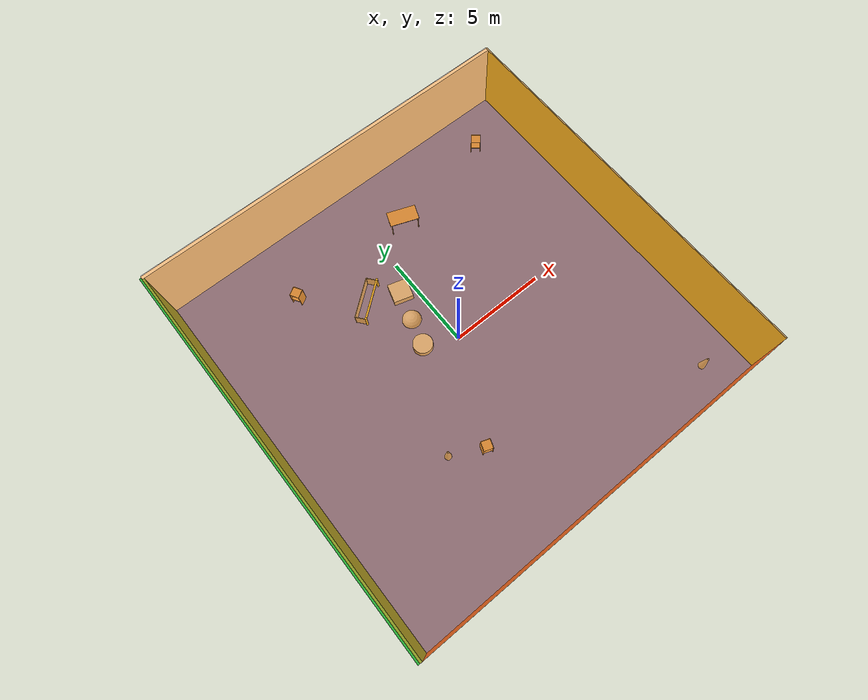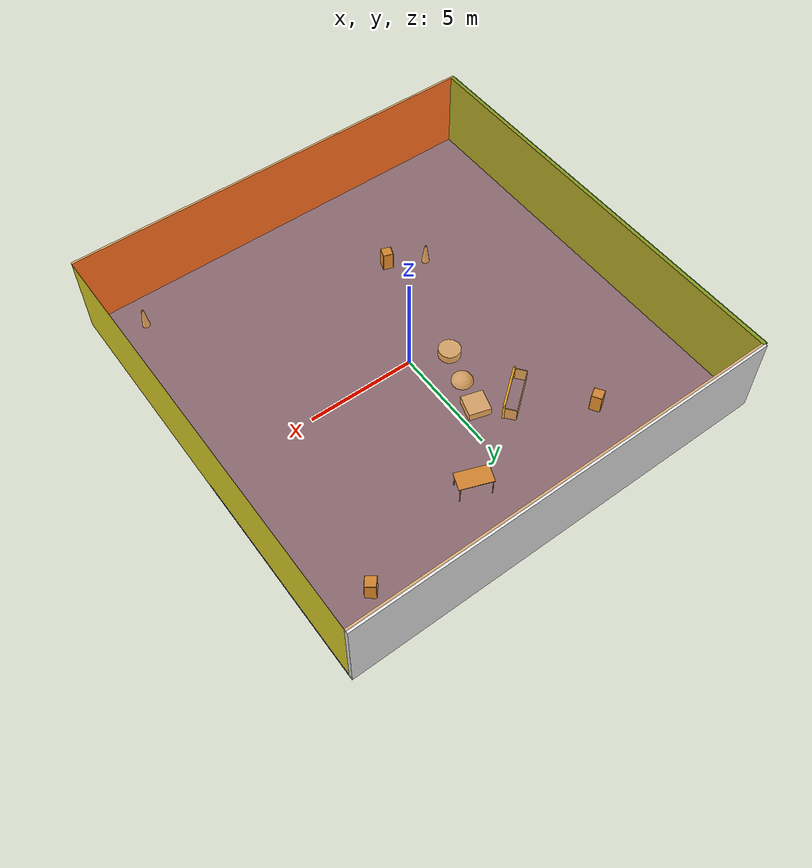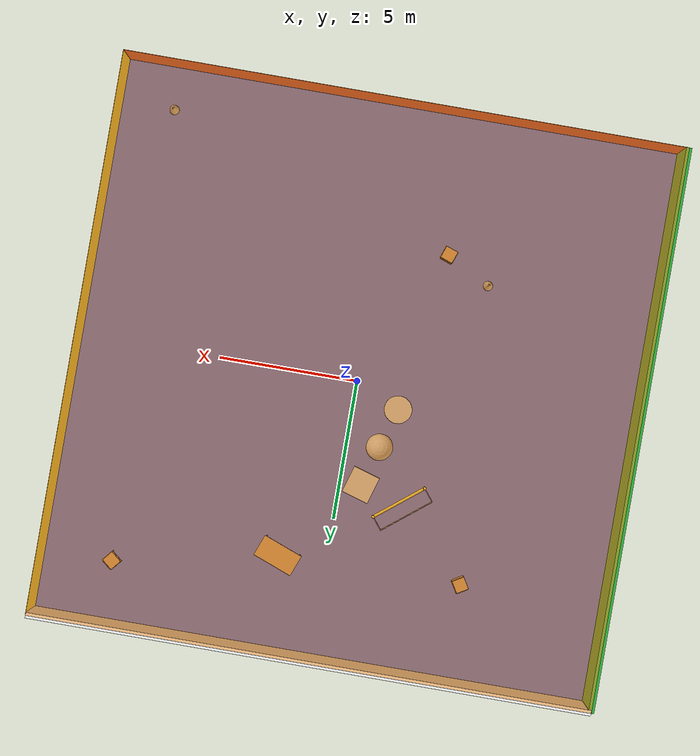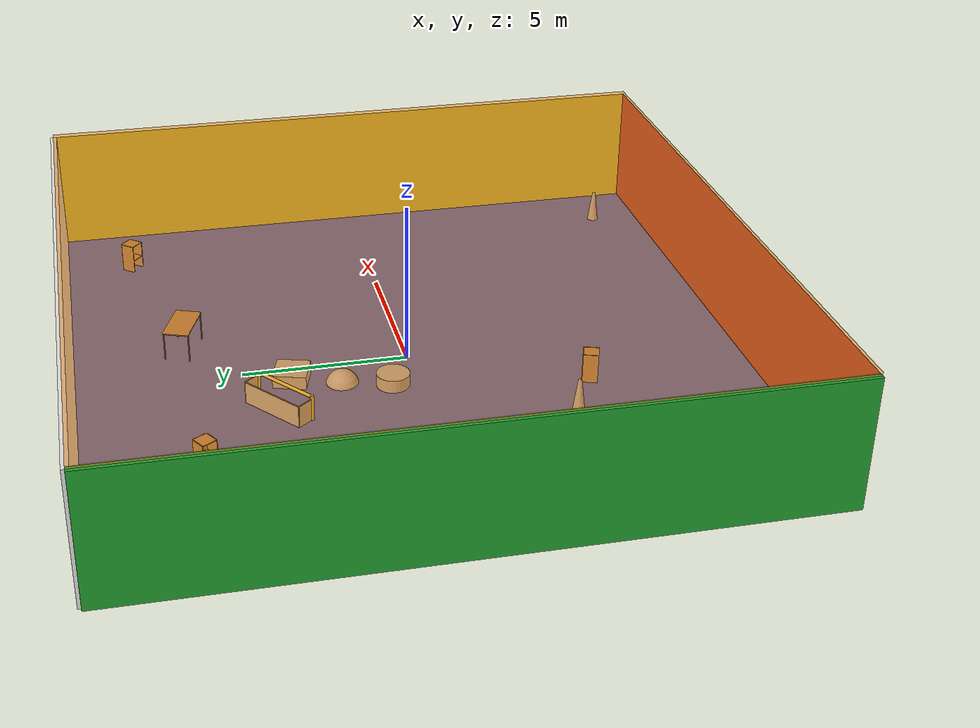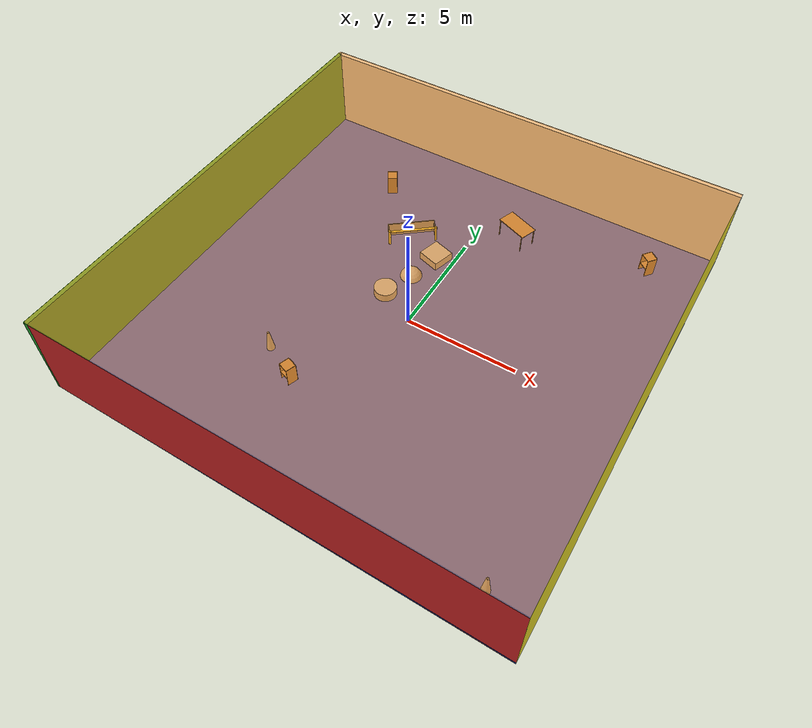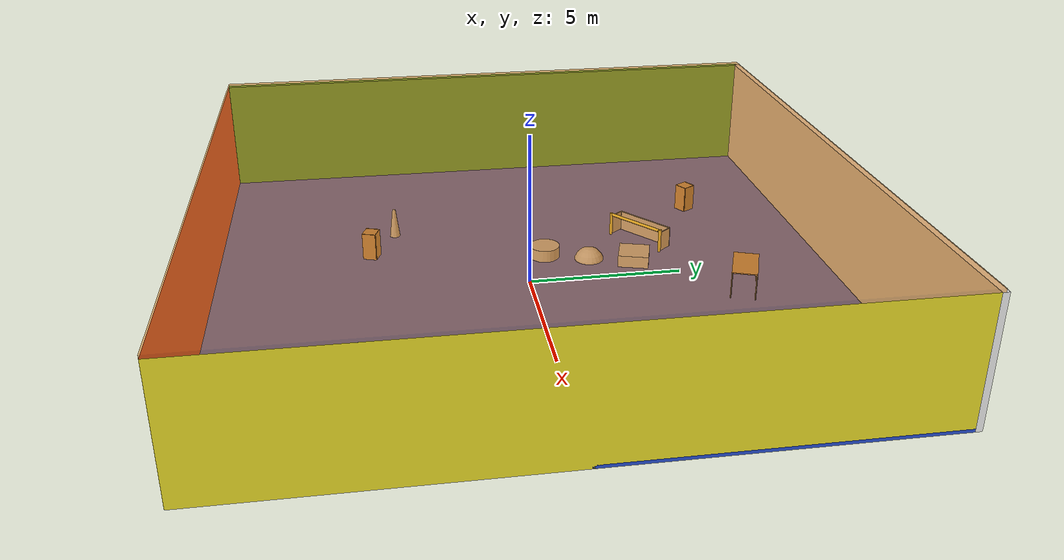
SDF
<sdf version="1.4">
 <world name="default">
  <physics type="ode">
   <max_step_size>0.001</max_step_size>
   <real_time_factor>1</real_time_factor>
   <real_time_update_rate>1000</real_time_update_rate>
   <gravity>0 0 -9.8</gravity>
  </physics>
  <scene><ambient>0.4 0.4 0.4 1</ambient><background>0.7 0.7 0.7 1</background><shadows>1</shadows></scene>
  <model name="Surrounding">
   <static>1</static>
   <link name="Ceiling">
    <collision name="Ceiling_Collision"><geometry><box><size>20 20 0.1</size></box></geometry></collision>
    <visual name="Ceiling_Visual">
     <geometry><box><size>20 20 0.1</size></box></geometry>
     <material>
      <script>
       <uri>file://media/materials/scripts/gazebo.material</uri>
       <name>Gazebo/OrangeTransparent</name>
      </script>
     </material>
    </visual>
    <pose>0 0 4.05 0 0 0</pose>
   </link>
   <link name="Wall_South">
    <collision name="Wall_South_Collision">
     <geometry><box><size>20 0 4</size></box></geometry>
     <pose>0 0 2 0 -0 0</pose>
    </collision>
    <visual name="Wall_South_Visual">
     <pose>0 0 2 0 -0 0</pose>
     <geometry><box><size>20 0 4</size></box></geometry>
     <material>
      <script><uri>file://media/materials/scripts/gazebo.material</uri><name>Gazebo/RedBright</name></script>
     </material>
    </visual>
    <velocity_decay><linear>0</linear><angular>0</angular></velocity_decay>
    <pose>0 -10 0 0 -0 0</pose>
   </link>
   <link name="Wall_East">
    <collision name="Wall_21_Collision">
     <geometry><box><size>20 0 4</size></box></geometry>
     <pose>0 0 2 0 -0 0</pose>
    </collision>
    <visual name="Wall_21_Visual">
     <pose>0 0 2 0 -0 0</pose>
     <geometry><box><size>20 0 4</size></box></geometry>
     <material>
      <script><uri>file://media/materials/scripts/gazebo.material</uri><name>Gazebo/YellowGlow</name></script>
     </material>
    </visual>
    <velocity_decay><linear>0</linear><angular>0</angular></velocity_decay>
    <pose>10 0 0 0 -0 1.5708</pose>
   </link>
   <link name="Wall_North">
    <collision name="Wall_22_Collision">
     <geometry><box><size>20 0.2 4</size></box></geometry>
     <pose>0 0 2 0 -0 0</pose>
    </collision>
    <visual name="Wall_22_Visual">
     <pose>0 0 2 0 -0 0</pose>
     <geometry><box><size>20 0.2 4</size></box></geometry>
     <material>
      <script><uri>file://media/materials/scripts/gazebo.material</uri><name>Gazebo/White</name></script>
     </material>
    </visual>
    <velocity_decay><linear>0</linear><angular>0</angular></velocity_decay>
    <pose>0 10 0 0 -0 0</pose>
   </link>
   <link name="Wall_West">
    <collision name="Wall_23_Collision">
     <geometry><box><size>20 0.2 4</size></box></geometry>
     <pose>0 0 2 0 -0 0</pose>
    </collision>
    <visual name="Wall_23_Visual">
     <pose>0 0 2 0 -0 0</pose>
     <geometry><box><size>20 0.2 4</size></box></geometry>
     <material>
      <script><uri>file://media/materials/scripts/gazebo.material</uri><name>Gazebo/GreenGlow</name></script>
     </material>
    </visual>
    <velocity_decay><linear>0</linear><angular>0</angular></velocity_decay>
    <pose>-10 0 0 0 0 -1.5708</pose>
   </link>
   <link name="Ground_link">
    <collision name="collision">
     <pose>0 0 .05 0 -0 0</pose>
     <geometry><box><size>20 20 0.1</size></box></geometry>
    </collision>
    <visual name="visual">
     <pose>0 0 .05 0 -0 0</pose>
     <geometry><box><size>20 20 0.1</size></box></geometry>
     <material>
      <script><uri>file://media/materials/scripts/gazebo.material</uri><name>Gazebo/BlueGlow</name></script>
     </material>
    </visual>
   </link>
   <static>1</static>
  </model>
  <spherical_coordinates>
   <surface_model>EARTH_WGS84</surface_model>
   <latitude_deg>0</latitude_deg>
   <longitude_deg>0</longitude_deg>
   <elevation>0</elevation>
   <heading_deg>0</heading_deg>
  </spherical_coordinates>
  <light name="lightball_0" type="diffuse">
   <diffuse>0.8 0.8 0.8 1</diffuse>
   <specular>0.2 0.2 0.2 1</specular>
   <attenuation>
    <range>100</range>
    <constant>0.7</constant>
    <linear>0.01</linear>
    <quadratic>0.001</quadratic>
   </attenuation>
   <direction>-0.5 0.1 -0.9</direction>
   <pose>-4.9847766952 5.35863929309 1.28862618647 0 0 0</pose>
  </light>
  <light name="lightball_1" type="diffuse">
   <diffuse>0.8 0.8 0.8 1</diffuse>
   <specular>0.2 0.2 0.2 1</specular>
   <attenuation>
    <range>100</range>
    <constant>0.7</constant>
    <linear>0.01</linear>
    <quadratic>0.001</quadratic>
   </attenuation>
   <direction>-0.5 0.1 -0.9</direction>
   <pose>-7.83036503039 7.9553729412 1.0692190494 0 0 0</pose>
  </light>
  <light name="lightball_2" type="diffuse">
   <diffuse>0.8 0.8 0.8 1</diffuse>
   <specular>0.2 0.2 0.2 1</specular>
   <attenuation>
    <range>100</range>
    <constant>0.7</constant>
    <linear>0.01</linear>
    <quadratic>0.001</quadratic>
   </attenuation>
   <direction>-0.5 0.1 -0.9</direction>
   <pose>8.07583174899 5.17762010838 3.24424700298 0 0 0</pose>
  </light>
  <light name="lightball_3" type="diffuse">
   <diffuse>0.8 0.8 0.8 1</diffuse>
   <specular>0.2 0.2 0.2 1</specular>
   <attenuation>
    <range>100</range>
    <constant>0.7</constant>
    <linear>0.01</linear>
    <quadratic>0.001</quadratic>
   </attenuation>
   <direction>-0.5 0.1 -0.9</direction>
   <pose>-6.1548351201 -7.19529640477 2.65512415294 0 0 0</pose>
  </light>
  <light name="lightball_4" type="diffuse">
   <diffuse>0.8 0.8 0.8 1</diffuse>
   <specular>0.2 0.2 0.2 1</specular>
   <attenuation>
    <range>100</range>
    <constant>0.7</constant>
    <linear>0.01</linear>
    <quadratic>0.001</quadratic>
   </attenuation>
   <direction>-0.5 0.1 -0.9</direction>
   <pose>-6.36709988748 -2.82383108614 2.74916633255 0 0 0</pose>
  </light>
  <light name="lightball_5" type="diffuse">
   <diffuse>0.8 0.8 0.8 1</diffuse>
   <specular>0.2 0.2 0.2 1</specular>
   <attenuation>
    <range>100</range>
    <constant>0.7</constant>
    <linear>0.01</linear>
    <quadratic>0.001</quadratic>
   </attenuation>
   <direction>-0.5 0.1 -0.9</direction>
   <pose>1.55295051895 -3.23689947551 2.42082948723 0 0 0</pose>
  </light>
  <light name="lightball_6" type="diffuse">
   <diffuse>0.8 0.8 0.8 1</diffuse>
   <specular>0.2 0.2 0.2 1</specular>
   <attenuation>
    <range>100</range>
    <constant>0.7</constant>
    <linear>0.01</linear>
    <quadratic>0.001</quadratic>
   </attenuation>
   <direction>-0.5 0.1 -0.9</direction>
   <pose>-0.563254431644 8.4066033261 1.50988439767 0 0 0</pose>
  </light>
  <light name="lightball_7" type="diffuse">
   <diffuse>0.8 0.8 0.8 1</diffuse>
   <specular>0.2 0.2 0.2 1</specular>
   <attenuation>
    <range>100</range>
    <constant>0.7</constant>
    <linear>0.01</linear>
    <quadratic>0.001</quadratic>
   </attenuation>
   <direction>-0.5 0.1 -0.9</direction>
   <pose>-4.85526429622 7.52911919916 1.46989523825 0 0 0</pose>
  </light>
  <light name="lightball_8" type="diffuse">
   <diffuse>0.8 0.8 0.8 1</diffuse>
   <specular>0.2 0.2 0.2 1</specular>
   <attenuation>
    <range>100</range>
    <constant>0.7</constant>
    <linear>0.01</linear>
    <quadratic>0.001</quadratic>
   </attenuation>
   <direction>-0.5 0.1 -0.9</direction>
   <pose>-1.40033661918 -9.09527749983 1.64524933803 0 0 0</pose>
  </light>
  <light name="lightball_9" type="diffuse">
   <diffuse>0.8 0.8 0.8 1</diffuse>
   <specular>0.2 0.2 0.2 1</specular>
   <attenuation>
    <range>100</range>
    <constant>0.7</constant>
    <linear>0.01</linear>
    <quadratic>0.001</quadratic>
   </attenuation>
   <direction>-0.5 0.1 -0.9</direction>
   <pose>8.41849868897 6.2667429421 2.88273669423 0 0 0</pose>
  </light>
  <include>
   <uri>model://construction_cone</uri>
   <pose>-4.02775404374 -4.17727929536 0 0 0 2.3026882591</pose>
  </include>
  <include><uri>model://cabinet</uri><pose>-4.85442939832 6.52797807345 0 0 0 0.541798511304</pose></include>
  <include><uri>model://cabinet</uri><pose>-2.45591843256 -5.01519285149 0 0 0 1.23222109522</pose></include>
  <include>
   <uri>model://textured_shapes</uri>
   <pose>-1.18423776971 2.18529329865 0 0 0 2.85387050925</pose>
  </include>
  <include>
   <uri>model://robocup_3Dsim_goal</uri>
   <pose>-2.19916155011 4.0061679466 0 0 0 2.24391343131</pose>
  </include>
  <include><uri>model://table</uri><pose>1.73638177055 6.59572870487 0 0 0 2.78127828543</pose></include>
  <include>
   <uri>model://construction_cone</uri>
   <pose>8.12386386242 -8.48082476172 0 0 0 3.1051073894</pose>
  </include>
  <include><uri>model://cabinet</uri><pose>7.53364898873 7.78800816081 0 0 0 0.884009186929</pose></include>
 </world>
</sdf>

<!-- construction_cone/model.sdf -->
<sdf version="1.5">
  <model name="Construction Cone">
    <link name="link">
      <collision name="collision">
        <geometry>
          <mesh>
            <scale>10 10 10</scale>
            <uri>file://isr-testbed/construction_cone/meshes/construction_cone.dae</uri>
          </mesh>
        </geometry>
      </collision>
      <visual name="visual">
        <geometry>
          <mesh>
            <scale>10 10 10</scale>
            <uri>file://isr-testbed/construction_cone/meshes/construction_cone.dae</uri>
          </mesh>
        </geometry>
      </visual>
    </link>
  </model>
</sdf>

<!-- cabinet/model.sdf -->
<sdf version="1.5">
  <model name="cabinet">
    <static>true</static>
    <link name="cabinet_bottom_plate">
      <inertial>
        <pose>0 0 -1 0 0 0</pose>
        <inertia>
          <ixx>2.050000</ixx>
          <ixy>0</ixy>
          <ixz>0</ixz>
          <iyy>2.050000</iyy>
          <iyz>0</iyz>
          <izz>2.050000</izz>
        </inertia>
        <mass>25.000000</mass>
      </inertial>
      <collision name="cabinet_bottom_plate_geom">
        <pose>0 0 0.010000 0 0 0</pose>
        <geometry>
          <box>
            <size>0.450000 0.450000 0.020000</size>
          </box>
        </geometry>
      </collision>
      <visual name="cabinet_bottom_plate_geom_visual">
        <pose>0 0 0.010000 0 0 0</pose>
        <geometry>
          <box>
            <size>0.450000 0.450000 0.020000</size>
          </box>
        </geometry>
        <material>
          <script>
            <uri>model://media/materials/scripts/gazebo.material</uri>
            <name>Gazebo/Wood</name>
          </script>
        </material>
      </visual>
      <collision name="cabinet_bottom_plate_geom_cabinet_back_plate">
        <pose>0.235000 0 0.510000 0 0 0</pose>
        <geometry>
          <box>
            <size>0.020000 0.450000 1.020000</size>
          </box>
        </geometry>
      </collision>
      <visual name="cabinet_bottom_plate_geom_cabinet_back_plate_visual">
        <pose>0.235000 0 0.510000 0 0 0</pose>
        <geometry>
          <box>
            <size>0.020000 0.450000 1.020000</size>
          </box>
        </geometry>
        <material>
          <script>
            <uri>model://media/materials/scripts/gazebo.material</uri>
            <name>Gazebo/Wood</name>
          </script>
        </material>
      </visual>
      <collision name="cabinet_bottom_plate_geom_cabinet_left_plate">
        <pose>0 0.235000 0.510000 0 0 0</pose>
        <geometry>
          <box>
            <size>0.450000 0.020000 1.020000</size>
          </box>
        </geometry>
      </collision>
      <visual name="cabinet_bottom_plate_geom_cabinet_left_plate_visual">
        <pose>0 0.235000 0.510000 0 0 0</pose>
        <geometry>
          <box>
            <size>0.450000 0.020000 1.020000</size>
          </box>
        </geometry>
        <material>
          <script>
            <uri>model://media/materials/scripts/gazebo.material</uri>
            <name>Gazebo/Wood</name>
          </script>
        </material>
      </visual>
      <collision name="cabinet_bottom_plate_geom_cabinet_middle_plate">
        <pose>0 0 0.510000 0 0 0</pose>
        <geometry>
          <box>
            <size>0.450000 0.450000 0.020000</size>
          </box>
        </geometry>
      </collision>
      <visual name="cabinet_bottom_plate_geom_cabinet_middle_plate_visual">
        <pose>0 0 0.510000 0 0 0</pose>
        <geometry>
          <box>
            <size>0.450000 0.450000 0.020000</size>
          </box>
        </geometry>
        <material>
          <script>
            <uri>model://media/materials/scripts/gazebo.material</uri>
            <name>Gazebo/Wood</name>
          </script>
        </material>
      </visual>
      <collision name="cabinet_bottom_plate_geom_cabinet_right_plate">
        <pose>0 -0.235000 0.510000 0 0 0</pose>
        <geometry>
          <box>
            <size>0.450000 0.020000 1.020000</size>
          </box>
        </geometry>
      </collision>
      <visual name="cabinet_bottom_plate_geom_cabinet_right_plate_visual">
        <pose>0 -0.235000 0.510000 0 0 0</pose>
        <geometry>
          <box>
            <size>0.450000 0.020000 1.020000</size>
          </box>
        </geometry>
        <material>
          <script>
            <uri>model://media/materials/scripts/gazebo.material</uri>
            <name>Gazebo/Wood</name>
          </script>
        </material>
      </visual>
      <collision name="cabinet_bottom_plate_geom_cabinet_top_plate">
        <pose>0 0 1.010000 0 0 0</pose>
        <geometry>
          <box>
            <size>0.450000 0.450000 0.020000</size>
          </box>
        </geometry>
      </collision>
      <visual name="cabinet_bottom_plate_geom_cabinet_top_plate_visual">
        <pose>0 0 1.010000 0 0 0</pose>
        <geometry>
          <box>
            <size>0.450000 0.450000 0.020000</size>
          </box>
        </geometry>
        <material>
          <script>
            <uri>model://media/materials/scripts/gazebo.material</uri>
            <name>Gazebo/Wood</name>
          </script>
        </material>
      </visual>
    </link>
  </model>
</sdf>

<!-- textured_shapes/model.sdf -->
<sdf version="1.6">
  <model name="textured_shapes">
    <pose>0 0 0.5 0 0 0</pose>
    <link name="box">
      <pose>0 -1.5 0 0 0 0</pose>
      <collision name="collision">
        <geometry>
          <box>
            <size>1 1 1</size>
          </box>
        </geometry>
      </collision>
      <visual name="visual">
        <geometry>
          <box>
            <size>1 1 1</size>
          </box>
        </geometry>
        <material>
          <script>
            <uri>model://../model_source/models/textured_shapes/materials/scripts</uri>
            <uri>model://../model_source/models/textured_shapes/materials/textures</uri>
            <name>TexturedShape/Squares</name>
          </script>
        </material>
      </visual>
    </link>
    <link name="sphere">
      <collision name="collision">
        <geometry>
          <sphere>
            <radius>0.5</radius>
          </sphere>
        </geometry>
      </collision>
      <visual name="visual">
        <geometry>
          <sphere>
            <radius>0.5</radius>
          </sphere>
        </geometry>
        <material>
          <script>
            <uri>model://../model_source/models/textured_shapes/materials/scripts</uri>
            <uri>model://../model_source/models/textured_shapes/materials/textures</uri>
            <name>TexturedShape/Squares</name>
          </script>
        </material>
      </visual>
    </link>
    <link name="cylinder">
      <pose>0 1.5 0 0 0 0</pose>
      <collision name="collision">
        <geometry>
          <cylinder>
            <radius>0.5</radius>
            <length>1</length>
          </cylinder>
        </geometry>
      </collision>
      <visual name="visual">
        <geometry>
          <cylinder>
            <radius>0.5</radius>
            <length>1</length>
          </cylinder>
        </geometry>
        <material>
          <script>
            <uri>model://../model_source/models/textured_shapes/materials/scripts</uri>
            <uri>model://../model_source/models/textured_shapes/materials/textures</uri>
            <name>TexturedShape/Squares</name>
          </script>
        </material>
      </visual>
    </link>
  </model>
</sdf>

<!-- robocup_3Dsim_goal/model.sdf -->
<sdf version="1.5">
  <model name="robocup_3d_goal">
    <static>true</static>
    <link name="left_post">
      <pose>0 1.05 0.45 0 0 0</pose>
      <collision name="collision">
        <geometry>
          <cylinder>
            <radius>0.05</radius>
            <length>0.9</length>
          </cylinder>
        </geometry>
      </collision>
      <visual name="visual">
        <geometry>
          <cylinder>
            <radius>0.05</radius>
            <length>0.9</length>
          </cylinder>
        </geometry>
        <material>
          <script>
            <uri>file://media/materials/scripts/gazebo.material</uri>
            <name>Gazebo/ZincYellow</name>
          </script>
        </material>
      </visual>
    </link>
    <link name="left_support_horiz_lower">
      <pose>0.30 1.05 0.01 0 0 0</pose>
      <collision name="collision">
        <geometry>
          <box>
            <size>0.50 0.02 0.02</size>
          </box>
        </geometry>
      </collision>
      <visual name="visual">
        <geometry>
          <box>
            <size>0.50 0.02 0.02</size>
          </box>
        </geometry>
        <material>
          <script>
            <uri>file://media/materials/scripts/gazebo.material</uri>
            <name>Gazebo/White</name>
          </script>
        </material>
      </visual>
    </link>
    <link name="left_support_horiz_upper">
      <pose>0.30 1.05 0.79 0 0 0</pose>
      <collision name="collision">
        <geometry>
          <box>
            <size>0.50 0.02 0.02</size>
          </box>
        </geometry>
      </collision>
      <visual name="visual">
        <geometry>
          <box>
            <size>0.50 0.02 0.02</size>
          </box>
        </geometry>
        <material>
          <script>
            <uri>file://media/materials/scripts/gazebo.material</uri>
            <name>Gazebo/White</name>
          </script>
        </material>
      </visual>
    </link>
    <link name="left_support_vertical">
      <pose>0.56 1.05 0.4 0 1.5708 0</pose>
      <collision name="collision">
        <geometry>
          <box>
            <size>0.80 0.02 0.02</size>
          </box>
        </geometry>
      </collision>
      <visual name="visual">
        <geometry>
          <box>
            <size>0.80 0.02 0.02</size>
          </box>
        </geometry>
        <material>
          <script>
            <uri>file://media/materials/scripts/gazebo.material</uri>
            <name>Gazebo/White</name>
          </script>
        </material>
      </visual>
    </link>
    <link name="right_support_horiz_lower">
      <pose>0.30 -1.05 0.01 0 0 0</pose>
      <collision name="collision">
        <geometry>
          <box>
            <size>0.50 0.02 0.02</size>
          </box>
        </geometry>
      </collision>
      <visual name="visual">
        <geometry>
          <box>
            <size>0.50 0.02 0.02</size>
          </box>
        </geometry>
        <material>
          <script>
            <uri>file://media/materials/scripts/gazebo.material</uri>
            <name>Gazebo/White</name>
          </script>
        </material>
      </visual>
    </link>
    <link name="right_support_horiz_upper">
      <pose>0.30 -1.05 0.79 0 0 0</pose>
      <collision name="collision">
        <geometry>
          <box>
            <size>0.50 0.02 0.02</size>
          </box>
        </geometry>
      </collision>
      <visual name="visual">
        <geometry>
          <box>
            <size>0.50 0.02 0.02</size>
          </box>
        </geometry>
        <material>
          <script>
            <uri>file://media/materials/scripts/gazebo.material</uri>
            <name>Gazebo/White</name>
          </script>
        </material>
      </visual>
    </link>
    <link name="right_support_vertical">
      <pose>0.56 -1.05 0.4 0 1.5708 0</pose>
      <collision name="collision">
        <geometry>
          <box>
            <size>0.80 0.02 0.02</size>
          </box>
        </geometry>
      </collision>
      <visual name="visual">
        <geometry>
          <box>
            <size>0.80 0.02 0.02</size>
          </box>
        </geometry>
        <material>
          <script>
            <uri>file://media/materials/scripts/gazebo.material</uri>
            <name>Gazebo/White</name>
          </script>
        </material>
      </visual>
    </link>
    <link name="center_support_horiz_lower">
      <pose>0.56 0 0.01 0 1.5708 0</pose>
      <collision name="collision">
        <geometry>
          <box>
            <size>0.02 2.08 0.02</size>
          </box>
        </geometry>
      </collision>
      <visual name="visual">
        <geometry>
          <box>
            <size>0.02 2.08 0.02</size>
          </box>
        </geometry>
        <material>
          <script>
            <uri>file://media/materials/scripts/gazebo.material</uri>
            <name>Gazebo/White</name>
          </script>
        </material>
      </visual>
    </link>
    <link name="center_support_horiz_upper">
      <pose>0.56 0 0.79 0 1.5708 0</pose>
      <collision name="collision">
        <geometry>
          <box>
            <size>0.02 2.08 0.02</size>
          </box>
        </geometry>
      </collision>
      <visual name="visual">
        <geometry>
          <box>
            <size>0.02 2.08 0.02</size>
          </box>
        </geometry>
        <material>
          <script>
            <uri>file://media/materials/scripts/gazebo.material</uri>
            <name>Gazebo/White</name>
          </script>
        </material>
      </visual>
    </link>
    <link name="right_post">
      <pose>0 -1.05 0.45 0 0 0</pose>
      <collision name="collision">
        <geometry>
          <cylinder>
            <radius>0.05</radius>
            <length>0.9</length>
          </cylinder>
        </geometry>
      </collision>
      <visual name="visual">
        <geometry>
          <cylinder>
            <radius>0.05</radius>
            <length>0.9</length>
          </cylinder>
        </geometry>
        <material>
          <script>
            <uri>file://media/materials/scripts/gazebo.material</uri>
            <name>Gazebo/ZincYellow</name>
          </script>
        </material>
      </visual>
    </link>
    <link name="crossbar">
      <pose>0 0 0.85 1.57 1.57 0</pose>
      <collision name="collision">
        <geometry>
          <cylinder>
            <radius>0.05</radius>
            <length>2.0</length>
          </cylinder>
        </geometry>
      </collision>
      <visual name="visual">
        <geometry>
          <cylinder>
            <radius>0.05</radius>
            <length>2.0</length>
          </cylinder>
        </geometry>
        <material>
          <script>
            <uri>file://media/materials/scripts/gazebo.material</uri>
            <name>Gazebo/ZincYellow</name>
          </script>
        </material>
      </visual>
    </link>
    <link name="center_net">
      <pose>0.56 0 0.40 0 0 0</pose>
      <collision name="collision">
        <geometry>
          <box>
            <size>0.01 2.1 0.80</size>
          </box>
        </geometry>
      </collision>
      <visual name="visual">
        <geometry>
          <box>
            <size>0.01 2.1 0.80</size>
          </box>
        </geometry>
        <material>
          <script>
            <uri>model://../model_source/models/robocup09_spl_field/materials/scripts/</uri>
            <uri>model://../model_source/models/robocup09_spl_field/materials/textures/</uri>
            <name>RoboCup/Net</name>
          </script>
        </material>
      </visual>
    </link>
    <link name="left_net">
      <pose>0.30 1.05 0.40 0 0 0</pose>
      <collision name="collision">
        <geometry>
          <box>
            <size>0.50 0.01 0.76</size>
          </box>
        </geometry>
      </collision>
      <visual name="visual">
        <geometry>
          <box>
            <size>0.50 0.01 0.76</size>
          </box>
        </geometry>
        <material>
          <script>
            <uri>model://../model_source/models/robocup09_spl_field/materials/scripts/</uri>
            <uri>model://../model_source/models/robocup09_spl_field/materials/textures/</uri>
            <name>RoboCup/Net</name>
          </script>
        </material>
      </visual>
    </link>
    <link name="right_net">
      <pose>0.30 -1.05 0.40 0 0 0</pose>
      <collision name="collision">
        <geometry>
          <box>
            <size>0.50 0.01 0.76</size>
          </box>
        </geometry>
      </collision>
      <visual name="visual">
        <geometry>
          <box>
            <size>0.50 0.01 0.76</size>
          </box>
        </geometry>
        <material>
          <script>
            <uri>model://../model_source/models/robocup09_spl_field/materials/scripts/</uri>
            <uri>model://../model_source/models/robocup09_spl_field/materials/textures/</uri>
            <name>RoboCup/Net</name>
          </script>
        </material>
      </visual>
    </link>
  </model>
</sdf>

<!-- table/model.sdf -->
<sdf version="1.5">
  <model name="table">
    <static>true</static>
    <link name="link">
      <collision name="surface">
        <pose>0 0 1.0 0 0 0</pose>
        <geometry>
          <box>
            <size>1.5 0.8 0.03</size>
          </box>
        </geometry>
        <surface>
          <friction>
            <ode>
              <mu>0.6</mu>
              <mu2>0.6</mu2>
            </ode>
          </friction>
        </surface>
      </collision>
      <visual name="visual1">
        <pose>0 0 1.0 0 0 0</pose>
        <geometry>
          <box>
            <size>1.5 0.8 0.03</size>
          </box>
        </geometry>
        <material>
          <script>
            <uri>model://media/materials/scripts/gazebo.material</uri>
            <name>Gazebo/Wood</name>
          </script>
        </material>
      </visual>
      <collision name="front_left_leg">
        <pose>0.68 0.38 0.5 0 0 0</pose>
        <geometry>
          <cylinder>
            <radius>0.02</radius>
            <length>1.0</length>
          </cylinder>
        </geometry>
      </collision>
      <visual name="front_left_leg">
        <pose>0.68 0.38 0.5 0 0 0</pose>
        <geometry>
          <cylinder>
            <radius>0.02</radius>
            <length>1.0</length>
          </cylinder>
        </geometry>
        <material>
          <script>
            <uri>model://media/materials/scripts/gazebo.material</uri>
            <name>Gazebo/Grey</name>
          </script>
        </material>
      </visual>
      <collision name="front_right_leg">
        <pose>0.68 -0.38 0.5 0 0 0</pose>
        <geometry>
          <cylinder>
            <radius>0.02</radius>
            <length>1.0</length>
          </cylinder>
        </geometry>
      </collision>
      <visual name="front_right_leg">
        <pose>0.68 -0.38 0.5 0 0 0</pose>
        <geometry>
          <cylinder>
            <radius>0.02</radius>
            <length>1.0</length>
          </cylinder>
        </geometry>
        <material>
          <script>
            <uri>model://media/materials/scripts/gazebo.material</uri>
            <name>Gazebo/Grey</name>
          </script>
        </material>
      </visual>
      <collision name="back_right_leg">
        <pose>-0.68 -0.38 0.5 0 0 0</pose>
        <geometry>
          <cylinder>
            <radius>0.02</radius>
            <length>1.0</length>
          </cylinder>
        </geometry>
      </collision>
      <visual name="back_right_leg">
        <pose>-0.68 -0.38 0.5 0 0 0</pose>
        <geometry>
          <cylinder>
            <radius>0.02</radius>
            <length>1.0</length>
          </cylinder>
        </geometry>
        <material>
          <script>
            <uri>model://media/materials/scripts/gazebo.material</uri>
            <name>Gazebo/Grey</name>
          </script>
        </material>
      </visual>
      <collision name="back_left_leg">
        <pose>-0.68 0.38 0.5 0 0 0</pose>
        <geometry>
          <cylinder>
            <radius>0.02</radius>
            <length>1.0</length>
          </cylinder>
        </geometry>
      </collision>
      <visual name="back_left_leg">
        <pose>-0.68 0.38 0.5 0 0 0</pose>
        <geometry>
          <cylinder>
            <radius>0.02</radius>
            <length>1.0</length>
          </cylinder>
        </geometry>
        <material>
          <script>
            <uri>model://media/materials/scripts/gazebo.material</uri>
            <name>Gazebo/Grey</name>
          </script>
        </material>
      </visual>
    </link>
  </model>
</sdf>
